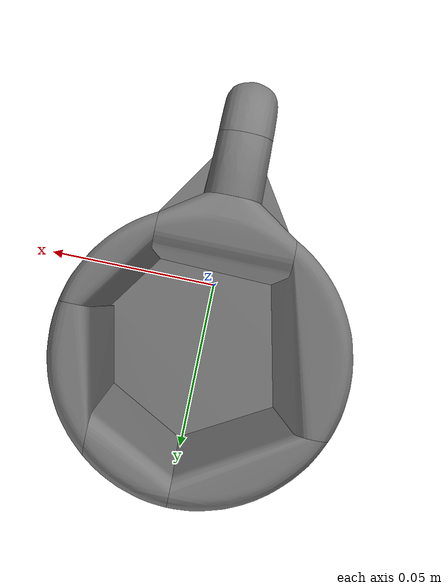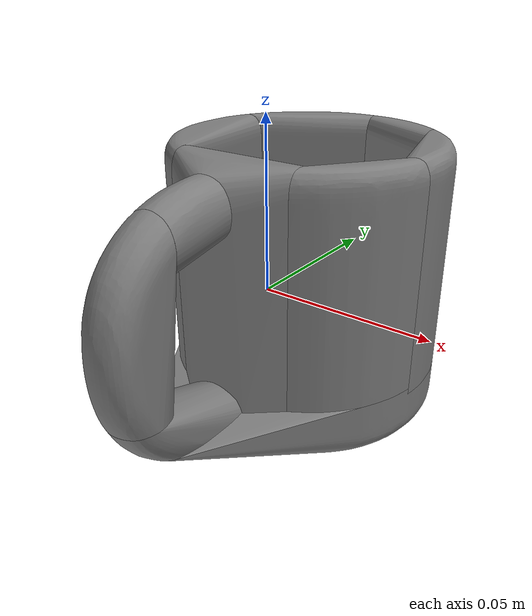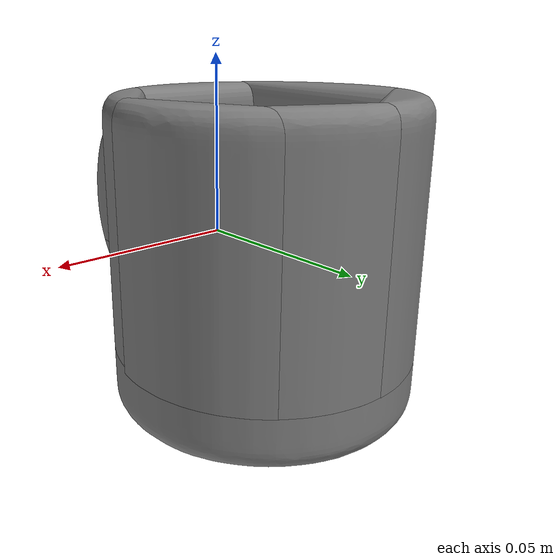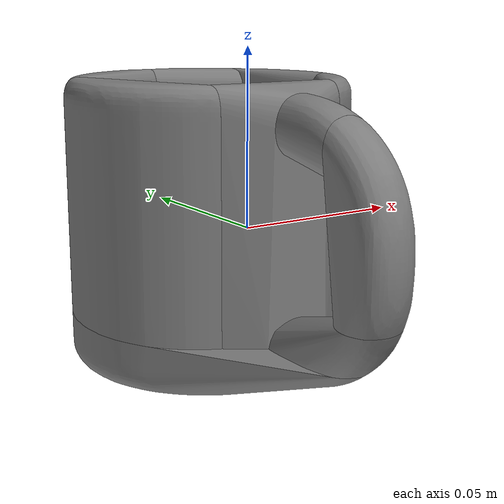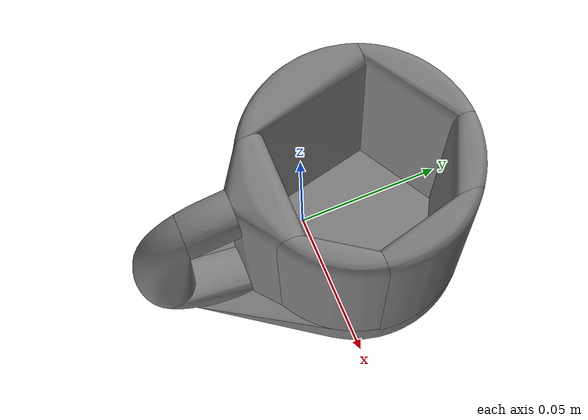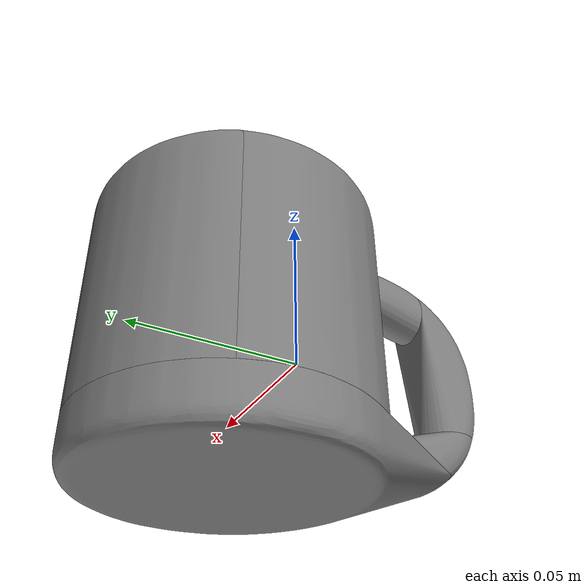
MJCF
<?xml version="1.0" ?>
<mujoco model="039_mug_7">
  <asset>
    <mesh name="039_mug_7_mesh" file="039_mug_7.stl" scale="0.063 0.063 0.063"/>
    <mesh name="039_mug_part_0" file="/home/yuan/ssd/datagen/datagen_July24/assets/objects/039_mug/7/decomposed/039_mug_7_decomposed_0.stl" scale="0.063 0.063 0.063"/>
    <mesh name="039_mug_part_1" file="/home/yuan/ssd/datagen/datagen_July24/assets/objects/039_mug/7/decomposed/039_mug_7_decomposed_1.stl" scale="0.063 0.063 0.063"/>
    <mesh name="039_mug_part_2" file="/home/yuan/ssd/datagen/datagen_July24/assets/objects/039_mug/7/decomposed/039_mug_7_decomposed_2.stl" scale="0.063 0.063 0.063"/>
    <mesh name="039_mug_part_3" file="/home/yuan/ssd/datagen/datagen_July24/assets/objects/039_mug/7/decomposed/039_mug_7_decomposed_3.stl" scale="0.063 0.063 0.063"/>
    <mesh name="039_mug_part_4" file="/home/yuan/ssd/datagen/datagen_July24/assets/objects/039_mug/7/decomposed/039_mug_7_decomposed_4.stl" scale="0.063 0.063 0.063"/>
    <mesh name="039_mug_part_5" file="/home/yuan/ssd/datagen/datagen_July24/assets/objects/039_mug/7/decomposed/039_mug_7_decomposed_5.stl" scale="0.063 0.063 0.063"/>
    <mesh name="039_mug_part_6" file="/home/yuan/ssd/datagen/datagen_July24/assets/objects/039_mug/7/decomposed/039_mug_7_decomposed_6.stl" scale="0.063 0.063 0.063"/>
    <mesh name="039_mug_part_7" file="/home/yuan/ssd/datagen/datagen_July24/assets/objects/039_mug/7/decomposed/039_mug_7_decomposed_7.stl" scale="0.063 0.063 0.063"/>
    <mesh name="039_mug_part_8" file="/home/yuan/ssd/datagen/datagen_July24/assets/objects/039_mug/7/decomposed/039_mug_7_decomposed_8.stl" scale="0.063 0.063 0.063"/>
    <mesh name="039_mug_part_9" file="/home/yuan/ssd/datagen/datagen_July24/assets/objects/039_mug/7/decomposed/039_mug_7_decomposed_9.stl" scale="0.063 0.063 0.063"/>
  </asset>
  <worldbody>
    <body name="039_mug">
      <geom name="039_mug_geom_0" type="mesh" mesh="039_mug_part_0"/>
      <geom name="039_mug_geom_1" type="mesh" mesh="039_mug_part_1"/>
      <geom name="039_mug_geom_2" type="mesh" mesh="039_mug_part_2"/>
      <geom name="039_mug_geom_3" type="mesh" mesh="039_mug_part_3"/>
      <geom name="039_mug_geom_4" type="mesh" mesh="039_mug_part_4"/>
      <geom name="039_mug_geom_5" type="mesh" mesh="039_mug_part_5"/>
      <geom name="039_mug_geom_6" type="mesh" mesh="039_mug_part_6"/>
      <geom name="039_mug_geom_7" type="mesh" mesh="039_mug_part_7"/>
      <geom name="039_mug_geom_8" type="mesh" mesh="039_mug_part_8"/>
      <geom name="039_mug_geom_9" type="mesh" mesh="039_mug_part_9"/>
    </body>
  </worldbody>
</mujoco>
